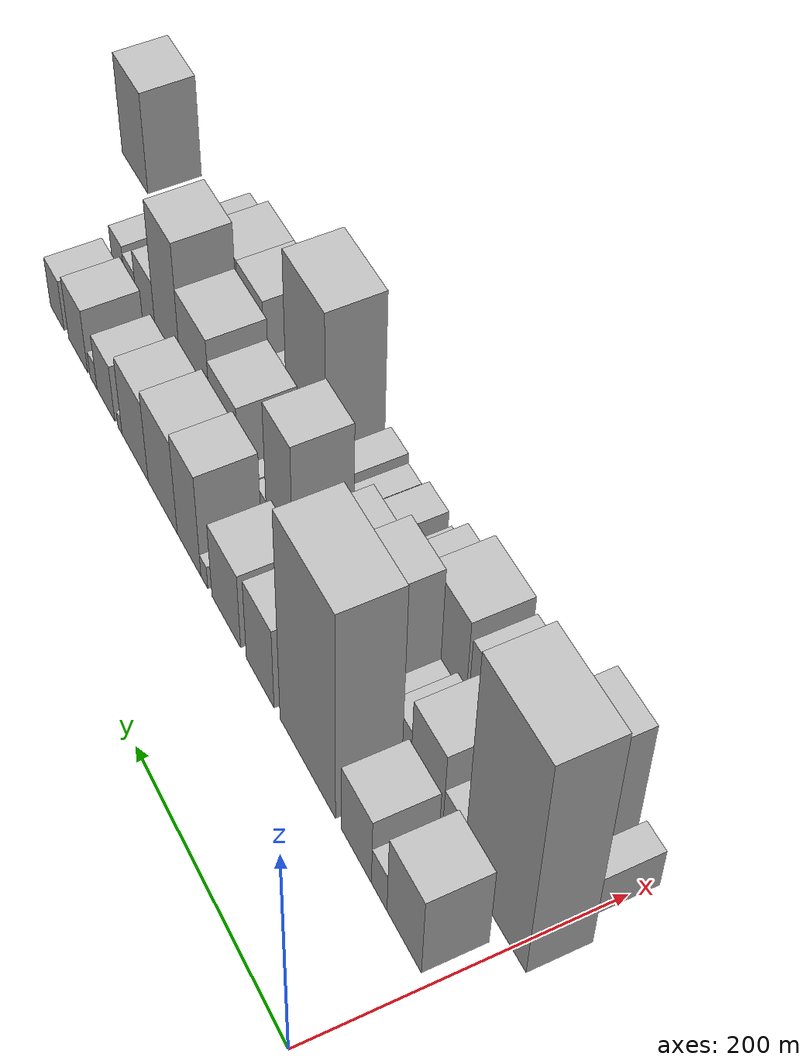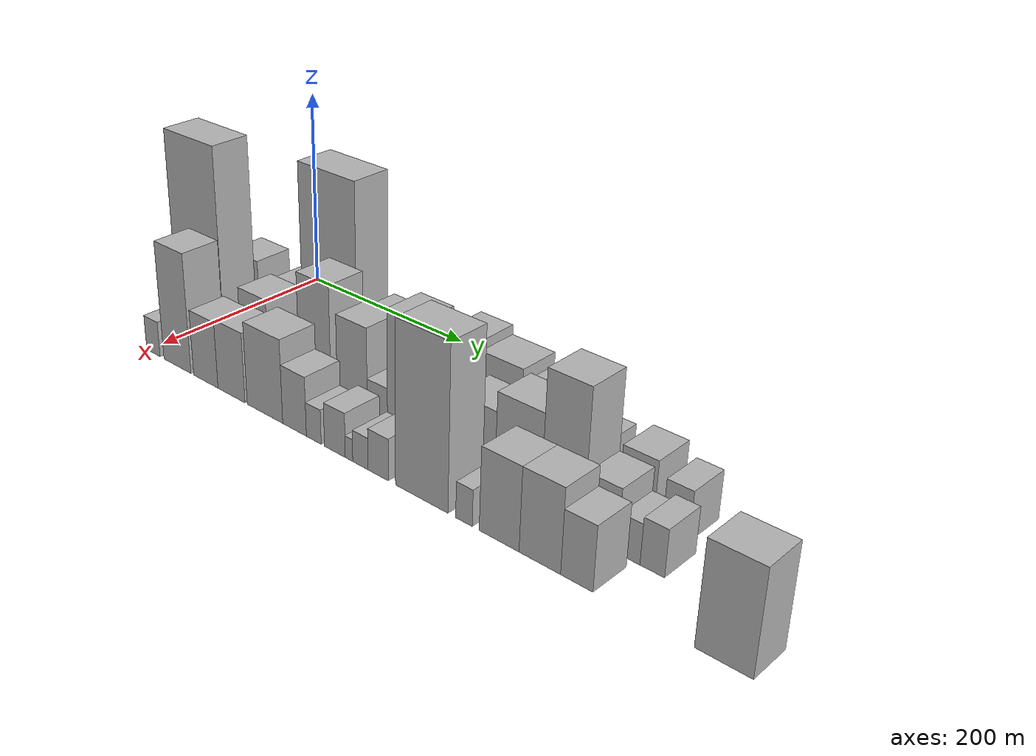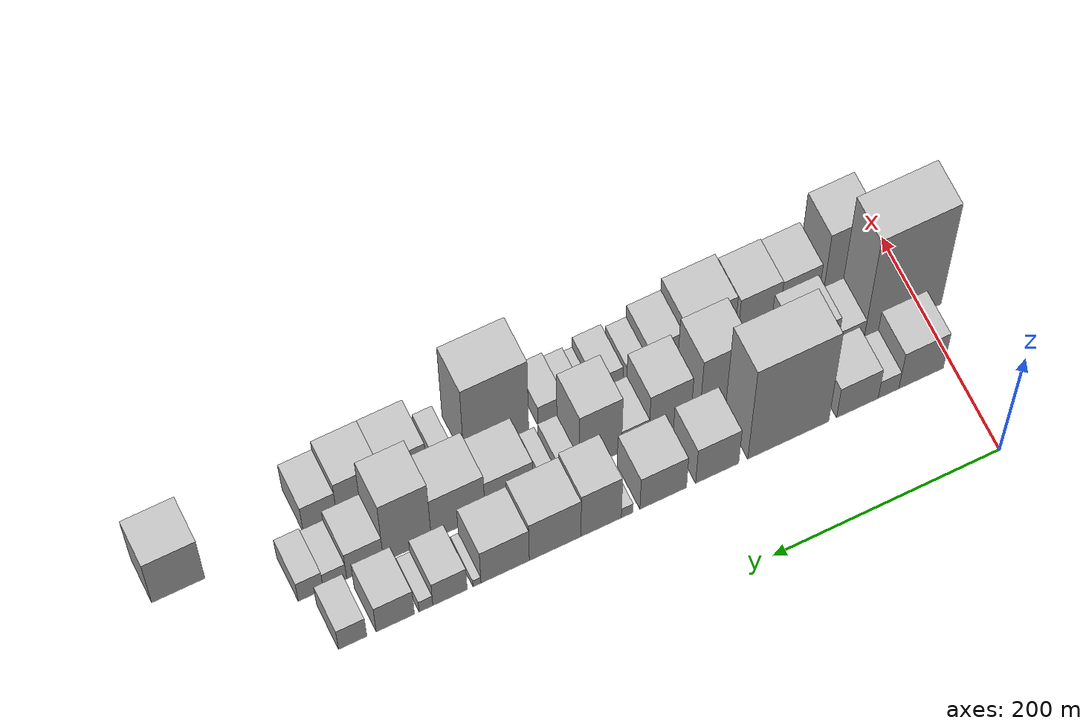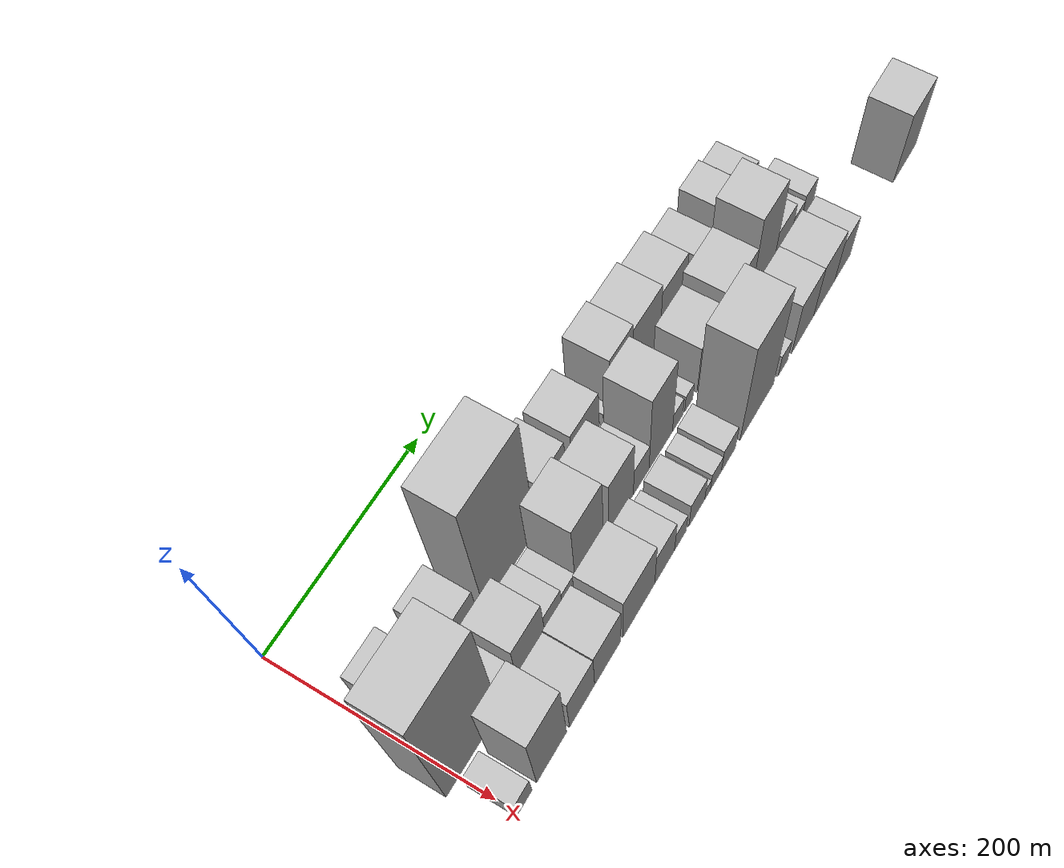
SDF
<sdf version="1.6">
 <world name="default">
  <model name="building_17">
   <static>1</static>
   <pose>100.0000 27.9538 0 0.000000 0.000000 0.000000</pose>
   <link name="link">
    <pose>0 0 37.50 0 0 0</pose>
    <collision name="collision"><geometry><box><size>40.0000 39.7601 75.0000</size></box></geometry></collision>
    <visual name="visual">
     <cast_shadows>0</cast_shadows>
     <geometry><box><size>40.0000 39.7601 75.0000</size></box></geometry>
     <material>
      <script>
       <uri>model://HANNAS_wall/materials/scripts</uri>
       <uri>model://HANNAS_wall/materials/textures</uri>
       <name>vrc/HANNAS_wall</name>
      </script>
     </material>
    </visual>
   </link>
  </model>
  <model name="building_18">
   <static>1</static>
   <pose>100.0000 57.0357 0 0.000000 0.000000 0.000000</pose>
   <link name="link">
    <pose>0 0 18.00 0 0 0</pose>
    <collision name="collision"><geometry><box><size>40.0000 18.4037 36.0000</size></box></geometry></collision>
    <visual name="visual">
     <cast_shadows>0</cast_shadows>
     <geometry><box><size>40.0000 18.4037 36.0000</size></box></geometry>
     <material>
      <script>
       <uri>model://HANNAS_wall/materials/scripts</uri>
       <uri>model://HANNAS_wall/materials/textures</uri>
       <name>vrc/HANNAS_wall</name>
      </script>
     </material>
    </visual>
   </link>
  </model>
  <model name="building_19">
   <static>1</static>
   <pose>100.0000 84.7148 0 0.000000 0.000000 0.000000</pose>
   <link name="link">
    <pose>0 0 31.50 0 0 0</pose>
    <collision name="collision"><geometry><box><size>40.0000 36.9546 63.0000</size></box></geometry></collision>
    <visual name="visual">
     <cast_shadows>0</cast_shadows>
     <geometry><box><size>40.0000 36.9546 63.0000</size></box></geometry>
     <material>
      <script>
       <uri>model://HANNAS_wall/materials/scripts</uri>
       <uri>model://HANNAS_wall/materials/textures</uri>
       <name>vrc/HANNAS_wall</name>
      </script>
     </material>
    </visual>
   </link>
  </model>
  <model name="building_20">
   <static>1</static>
   <pose>100.0000 145.9406 0 0.000000 0.000000 0.000000</pose>
   <link name="link">
    <pose>0 0 96.00 0 0 0</pose>
    <collision name="collision"><geometry><box><size>40.0000 71.4970 192.0000</size></box></geometry></collision>
    <visual name="visual">
     <cast_shadows>0</cast_shadows>
     <geometry><box><size>40.0000 71.4970 192.0000</size></box></geometry>
     <material>
      <script>
       <uri>model://HANNAS_wall/materials/scripts</uri>
       <uri>model://HANNAS_wall/materials/textures</uri>
       <name>vrc/HANNAS_wall</name>
      </script>
     </material>
    </visual>
   </link>
  </model>
  <model name="building_21">
   <static>1</static>
   <pose>100.0000 208.5937 0 0.000000 0.000000 0.000000</pose>
   <link name="link">
    <pose>0 0 37.50 0 0 0</pose>
    <collision name="collision"><geometry><box><size>40.0000 37.8092 75.0000</size></box></geometry></collision>
    <visual name="visual">
     <cast_shadows>0</cast_shadows>
     <geometry><box><size>40.0000 37.8092 75.0000</size></box></geometry>
     <material>
      <script>
       <uri>model://HANNAS_wall/materials/scripts</uri>
       <uri>model://HANNAS_wall/materials/textures</uri>
       <name>vrc/HANNAS_wall</name>
      </script>
     </material>
    </visual>
   </link>
  </model>
  <model name="building_22">
   <static>1</static>
   <pose>100.0000 255.8856 0 0.000000 0.000000 0.000000</pose>
   <link name="link">
    <pose>0 0 34.50 0 0 0</pose>
    <collision name="collision"><geometry><box><size>40.0000 40.7748 69.0000</size></box></geometry></collision>
    <visual name="visual">
     <cast_shadows>0</cast_shadows>
     <geometry><box><size>40.0000 40.7748 69.0000</size></box></geometry>
     <material>
      <script>
       <uri>model://HANNAS_wall/materials/scripts</uri>
       <uri>model://HANNAS_wall/materials/textures</uri>
       <name>vrc/HANNAS_wall</name>
      </script>
     </material>
    </visual>
   </link>
  </model>
  <model name="building_23">
   <static>1</static>
   <pose>100.0000 287.3628 0 0.000000 0.000000 0.000000</pose>
   <link name="link">
    <pose>0 0 10.50 0 0 0</pose>
    <collision name="collision"><geometry><box><size>40.0000 10.1794 21.0000</size></box></geometry></collision>
    <visual name="visual">
     <cast_shadows>0</cast_shadows>
     <geometry><box><size>40.0000 10.1794 21.0000</size></box></geometry>
     <material>
      <script>
       <uri>model://HANNAS_wall/materials/scripts</uri>
       <uri>model://HANNAS_wall/materials/textures</uri>
       <name>vrc/HANNAS_wall</name>
      </script>
     </material>
    </visual>
   </link>
  </model>
  <model name="building_24">
   <static>1</static>
   <pose>100.0000 309.9625 0 0.000000 0.000000 0.000000</pose>
   <link name="link">
    <pose>0 0 46.50 0 0 0</pose>
    <collision name="collision"><geometry><box><size>40.0000 35.0200 93.0000</size></box></geometry></collision>
    <visual name="visual">
     <cast_shadows>0</cast_shadows>
     <geometry><box><size>40.0000 35.0200 93.0000</size></box></geometry>
     <material>
      <script>
       <uri>model://HANNAS_wall/materials/scripts</uri>
       <uri>model://HANNAS_wall/materials/textures</uri>
       <name>vrc/HANNAS_wall</name>
      </script>
     </material>
    </visual>
   </link>
  </model>
  <model name="building_25">
   <static>1</static>
   <pose>100.0000 349.8881 0 0.000000 0.000000 0.000000</pose>
   <link name="link">
    <pose>0 0 42.00 0 0 0</pose>
    <collision name="collision"><geometry><box><size>40.0000 44.8312 84.0000</size></box></geometry></collision>
    <visual name="visual">
     <cast_shadows>0</cast_shadows>
     <geometry><box><size>40.0000 44.8312 84.0000</size></box></geometry>
     <material>
      <script>
       <uri>model://HANNAS_wall/materials/scripts</uri>
       <uri>model://HANNAS_wall/materials/textures</uri>
       <name>vrc/HANNAS_wall</name>
      </script>
     </material>
    </visual>
   </link>
  </model>
  <model name="building_26">
   <static>1</static>
   <pose>100.0000 393.1791 0 0.000000 0.000000 0.000000</pose>
   <link name="link">
    <pose>0 0 36.00 0 0 0</pose>
    <collision name="collision"><geometry><box><size>40.0000 41.7509 72.0000</size></box></geometry></collision>
    <visual name="visual">
     <cast_shadows>0</cast_shadows>
     <geometry><box><size>40.0000 41.7509 72.0000</size></box></geometry>
     <material>
      <script>
       <uri>model://HANNAS_wall/materials/scripts</uri>
       <uri>model://HANNAS_wall/materials/textures</uri>
       <name>vrc/HANNAS_wall</name>
      </script>
     </material>
    </visual>
   </link>
  </model>
  <model name="building_27">
   <static>1</static>
   <pose>100.0000 417.5110 0 0.000000 0.000000 0.000000</pose>
   <link name="link">
    <pose>0 0 7.50 0 0 0</pose>
    <collision name="collision"><geometry><box><size>40.0000 6.9128 15.0000</size></box></geometry></collision>
    <visual name="visual">
     <cast_shadows>0</cast_shadows>
     <geometry><box><size>40.0000 6.9128 15.0000</size></box></geometry>
     <material>
      <script>
       <uri>model://HANNAS_wall/materials/scripts</uri>
       <uri>model://HANNAS_wall/materials/textures</uri>
       <name>vrc/HANNAS_wall</name>
      </script>
     </material>
    </visual>
   </link>
  </model>
  <model name="building_28">
   <static>1</static>
   <pose>100.0000 440.7020 0 0.000000 0.000000 0.000000</pose>
   <link name="link">
    <pose>0 0 25.50 0 0 0</pose>
    <collision name="collision"><geometry><box><size>40.0000 29.4691 51.0000</size></box></geometry></collision>
    <visual name="visual">
     <cast_shadows>0</cast_shadows>
     <geometry><box><size>40.0000 29.4691 51.0000</size></box></geometry>
     <material>
      <script>
       <uri>model://HANNAS_wall/materials/scripts</uri>
       <uri>model://HANNAS_wall/materials/textures</uri>
       <name>vrc/HANNAS_wall</name>
      </script>
     </material>
    </visual>
   </link>
  </model>
  <model name="building_29">
   <static>1</static>
   <pose>100.0000 461.3419 0 0.000000 0.000000 0.000000</pose>
   <link name="link">
    <pose>0 0 12.00 0 0 0</pose>
    <collision name="collision"><geometry><box><size>40.0000 11.8106 24.0000</size></box></geometry></collision>
    <visual name="visual">
     <cast_shadows>0</cast_shadows>
     <geometry><box><size>40.0000 11.8106 24.0000</size></box></geometry>
     <material>
      <script>
       <uri>model://HANNAS_wall/materials/scripts</uri>
       <uri>model://HANNAS_wall/materials/textures</uri>
       <name>vrc/HANNAS_wall</name>
      </script>
     </material>
    </visual>
   </link>
  </model>
  <model name="building_30">
   <static>1</static>
   <pose>100.0000 487.6232 0 0.000000 0.000000 0.000000</pose>
   <link name="link">
    <pose>0 0 28.50 0 0 0</pose>
    <collision name="collision"><geometry><box><size>40.0000 32.7519 57.0000</size></box></geometry></collision>
    <visual name="visual">
     <cast_shadows>0</cast_shadows>
     <geometry><box><size>40.0000 32.7519 57.0000</size></box></geometry>
     <material>
      <script>
       <uri>model://HANNAS_wall/materials/scripts</uri>
       <uri>model://HANNAS_wall/materials/textures</uri>
       <name>vrc/HANNAS_wall</name>
      </script>
     </material>
    </visual>
   </link>
  </model>
  <model name="building_31">
   <static>1</static>
   <pose>100.0000 524.0731 0 0.000000 0.000000 0.000000</pose>
   <link name="link">
    <pose>0 0 22.50 0 0 0</pose>
    <collision name="collision"><geometry><box><size>40.0000 24.1480 45.0000</size></box></geometry></collision>
    <visual name="visual">
     <cast_shadows>0</cast_shadows>
     <geometry><box><size>40.0000 24.1480 45.0000</size></box></geometry>
     <material>
      <script>
       <uri>model://HANNAS_wall/materials/scripts</uri>
       <uri>model://HANNAS_wall/materials/textures</uri>
       <name>vrc/HANNAS_wall</name>
      </script>
     </material>
    </visual>
   </link>
  </model>
  <model name="building_46">
   <static>1</static>
   <pose>149.0000 18.8883 0 0.000000 0.000000 0.000000</pose>
   <link name="link">
    <pose>0 0 102.00 0 0 0</pose>
    <collision name="collision"><geometry><box><size>40.0000 69.2278 204.0000</size></box></geometry></collision>
    <visual name="visual">
     <cast_shadows>0</cast_shadows>
     <geometry><box><size>40.0000 69.2278 204.0000</size></box></geometry>
     <material>
      <script>
       <uri>model://HANNAS_wall/materials/scripts</uri>
       <uri>model://HANNAS_wall/materials/textures</uri>
       <name>vrc/HANNAS_wall</name>
      </script>
     </material>
    </visual>
   </link>
  </model>
  <model name="building_47">
   <static>1</static>
   <pose>149.0000 65.6728 0 0.000000 0.000000 0.000000</pose>
   <link name="link">
    <pose>0 0 21.00 0 0 0</pose>
    <collision name="collision"><geometry><box><size>40.0000 24.3411 42.0000</size></box></geometry></collision>
    <visual name="visual">
     <cast_shadows>0</cast_shadows>
     <geometry><box><size>40.0000 24.3411 42.0000</size></box></geometry>
     <material>
      <script>
       <uri>model://HANNAS_wall/materials/scripts</uri>
       <uri>model://HANNAS_wall/materials/textures</uri>
       <name>vrc/HANNAS_wall</name>
      </script>
     </material>
    </visual>
   </link>
  </model>
  <model name="building_48">
   <static>1</static>
   <pose>149.0000 96.9563 0 0.000000 0.000000 0.000000</pose>
   <link name="link">
    <pose>0 0 37.50 0 0 0</pose>
    <collision name="collision"><geometry><box><size>40.0000 38.2260 75.0000</size></box></geometry></collision>
    <visual name="visual">
     <cast_shadows>0</cast_shadows>
     <geometry><box><size>40.0000 38.2260 75.0000</size></box></geometry>
     <material>
      <script>
       <uri>model://HANNAS_wall/materials/scripts</uri>
       <uri>model://HANNAS_wall/materials/textures</uri>
       <name>vrc/HANNAS_wall</name>
      </script>
     </material>
    </visual>
   </link>
  </model>
  <model name="building_49">
   <static>1</static>
   <pose>149.0000 127.8370 0 0.000000 0.000000 0.000000</pose>
   <link name="link">
    <pose>0 0 22.50 0 0 0</pose>
    <collision name="collision"><geometry><box><size>40.0000 23.5353 45.0000</size></box></geometry></collision>
    <visual name="visual">
     <cast_shadows>0</cast_shadows>
     <geometry><box><size>40.0000 23.5353 45.0000</size></box></geometry>
     <material>
      <script>
       <uri>model://HANNAS_wall/materials/scripts</uri>
       <uri>model://HANNAS_wall/materials/textures</uri>
       <name>vrc/HANNAS_wall</name>
      </script>
     </material>
    </visual>
   </link>
  </model>
  <model name="building_50">
   <static>1</static>
   <pose>149.0000 149.1047 0 0.000000 0.000000 0.000000</pose>
   <link name="link">
    <pose>0 0 16.50 0 0 0</pose>
    <collision name="collision"><geometry><box><size>40.0000 19.0002 33.0000</size></box></geometry></collision>
    <visual name="visual">
     <cast_shadows>0</cast_shadows>
     <geometry><box><size>40.0000 19.0002 33.0000</size></box></geometry>
     <material>
      <script>
       <uri>model://HANNAS_wall/materials/scripts</uri>
       <uri>model://HANNAS_wall/materials/textures</uri>
       <name>vrc/HANNAS_wall</name>
      </script>
     </material>
    </visual>
   </link>
  </model>
  <model name="building_51">
   <static>1</static>
   <pose>149.0000 178.9064 0 0.000000 0.000000 0.000000</pose>
   <link name="link">
    <pose>0 0 58.50 0 0 0</pose>
    <collision name="collision"><geometry><box><size>40.0000 40.6032 117.0000</size></box></geometry></collision>
    <visual name="visual">
     <cast_shadows>0</cast_shadows>
     <geometry><box><size>40.0000 40.6032 117.0000</size></box></geometry>
     <material>
      <script>
       <uri>model://HANNAS_wall/materials/scripts</uri>
       <uri>model://HANNAS_wall/materials/textures</uri>
       <name>vrc/HANNAS_wall</name>
      </script>
     </material>
    </visual>
   </link>
  </model>
  <model name="building_52">
   <static>1</static>
   <pose>149.0000 225.6427 0 0.000000 0.000000 0.000000</pose>
   <link name="link">
    <pose>0 0 46.50 0 0 0</pose>
    <collision name="collision"><geometry><box><size>40.0000 36.8693 93.0000</size></box></geometry></collision>
    <visual name="visual">
     <cast_shadows>0</cast_shadows>
     <geometry><box><size>40.0000 36.8693 93.0000</size></box></geometry>
     <material>
      <script>
       <uri>model://HANNAS_wall/materials/scripts</uri>
       <uri>model://HANNAS_wall/materials/textures</uri>
       <name>vrc/HANNAS_wall</name>
      </script>
     </material>
    </visual>
   </link>
  </model>
  <model name="building_53">
   <static>1</static>
   <pose>149.0000 256.0992 0 0.000000 0.000000 0.000000</pose>
   <link name="link">
    <pose>0 0 22.50 0 0 0</pose>
    <collision name="collision"><geometry><box><size>40.0000 24.0437 45.0000</size></box></geometry></collision>
    <visual name="visual">
     <cast_shadows>0</cast_shadows>
     <geometry><box><size>40.0000 24.0437 45.0000</size></box></geometry>
     <material>
      <script>
       <uri>model://HANNAS_wall/materials/scripts</uri>
       <uri>model://HANNAS_wall/materials/textures</uri>
       <name>vrc/HANNAS_wall</name>
      </script>
     </material>
    </visual>
   </link>
  </model>
  <model name="building_54">
   <static>1</static>
   <pose>149.0000 286.5299 0 0.000000 0.000000 0.000000</pose>
   <link name="link">
    <pose>0 0 60.00 0 0 0</pose>
    <collision name="collision"><geometry><box><size>40.0000 36.8177 120.0000</size></box></geometry></collision>
    <visual name="visual">
     <cast_shadows>0</cast_shadows>
     <geometry><box><size>40.0000 36.8177 120.0000</size></box></geometry>
     <material>
      <script>
       <uri>model://HANNAS_wall/materials/scripts</uri>
       <uri>model://HANNAS_wall/materials/textures</uri>
       <name>vrc/HANNAS_wall</name>
      </script>
     </material>
    </visual>
   </link>
  </model>
  <model name="building_55">
   <static>1</static>
   <pose>149.0000 313.3222 0 0.000000 0.000000 0.000000</pose>
   <link name="link">
    <pose>0 0 15.00 0 0 0</pose>
    <collision name="collision"><geometry><box><size>40.0000 16.7668 30.0000</size></box></geometry></collision>
    <visual name="visual">
     <cast_shadows>0</cast_shadows>
     <geometry><box><size>40.0000 16.7668 30.0000</size></box></geometry>
     <material>
      <script>
       <uri>model://HANNAS_wall/materials/scripts</uri>
       <uri>model://HANNAS_wall/materials/textures</uri>
       <name>vrc/HANNAS_wall</name>
      </script>
     </material>
    </visual>
   </link>
  </model>
  <model name="building_56">
   <static>1</static>
   <pose>149.0000 331.3526 0 0.000000 0.000000 0.000000</pose>
   <link name="link">
    <pose>0 0 13.50 0 0 0</pose>
    <collision name="collision"><geometry><box><size>40.0000 13.2940 27.0000</size></box></geometry></collision>
    <visual name="visual">
     <cast_shadows>0</cast_shadows>
     <geometry><box><size>40.0000 13.2940 27.0000</size></box></geometry>
     <material>
      <script>
       <uri>model://HANNAS_wall/materials/scripts</uri>
       <uri>model://HANNAS_wall/materials/textures</uri>
       <name>vrc/HANNAS_wall</name>
      </script>
     </material>
    </visual>
   </link>
  </model>
  <model name="building_57">
   <static>1</static>
   <pose>149.0000 365.9065 0 0.000000 0.000000 0.000000</pose>
   <link name="link">
    <pose>0 0 36.00 0 0 0</pose>
    <collision name="collision"><geometry><box><size>40.0000 41.8138 72.0000</size></box></geometry></collision>
    <visual name="visual">
     <cast_shadows>0</cast_shadows>
     <geometry><box><size>40.0000 41.8138 72.0000</size></box></geometry>
     <material>
      <script>
       <uri>model://HANNAS_wall/materials/scripts</uri>
       <uri>model://HANNAS_wall/materials/textures</uri>
       <name>vrc/HANNAS_wall</name>
      </script>
     </material>
    </visual>
   </link>
  </model>
  <model name="building_58">
   <static>1</static>
   <pose>149.0000 410.0503 0 0.000000 0.000000 0.000000</pose>
   <link name="link">
    <pose>0 0 45.00 0 0 0</pose>
    <collision name="collision"><geometry><box><size>40.0000 46.4736 90.0000</size></box></geometry></collision>
    <visual name="visual">
     <cast_shadows>0</cast_shadows>
     <geometry><box><size>40.0000 46.4736 90.0000</size></box></geometry>
     <material>
      <script>
       <uri>model://HANNAS_wall/materials/scripts</uri>
       <uri>model://HANNAS_wall/materials/textures</uri>
       <name>vrc/HANNAS_wall</name>
      </script>
     </material>
    </visual>
   </link>
  </model>
  <model name="building_59">
   <static>1</static>
   <pose>149.0000 453.8525 0 0.000000 0.000000 0.000000</pose>
   <link name="link">
    <pose>0 0 64.50 0 0 0</pose>
    <collision name="collision"><geometry><box><size>40.0000 41.1309 129.0000</size></box></geometry></collision>
    <visual name="visual">
     <cast_shadows>0</cast_shadows>
     <geometry><box><size>40.0000 41.1309 129.0000</size></box></geometry>
     <material>
      <script>
       <uri>model://HANNAS_wall/materials/scripts</uri>
       <uri>model://HANNAS_wall/materials/textures</uri>
       <name>vrc/HANNAS_wall</name>
      </script>
     </material>
    </visual>
   </link>
  </model>
  <model name="building_60">
   <static>1</static>
   <pose>149.0000 490.2724 0 0.000000 0.000000 0.000000</pose>
   <link name="link">
    <pose>0 0 28.50 0 0 0</pose>
    <collision name="collision"><geometry><box><size>40.0000 31.7090 57.0000</size></box></geometry></collision>
    <visual name="visual">
     <cast_shadows>0</cast_shadows>
     <geometry><box><size>40.0000 31.7090 57.0000</size></box></geometry>
     <material>
      <script>
       <uri>model://HANNAS_wall/materials/scripts</uri>
       <uri>model://HANNAS_wall/materials/textures</uri>
       <name>vrc/HANNAS_wall</name>
      </script>
     </material>
    </visual>
   </link>
  </model>
  <model name="building_61">
   <static>1</static>
   <pose>149.0000 516.1334 0 0.000000 0.000000 0.000000</pose>
   <link name="link">
    <pose>0 0 18.00 0 0 0</pose>
    <collision name="collision"><geometry><box><size>40.0000 20.0129 36.0000</size></box></geometry></collision>
    <visual name="visual">
     <cast_shadows>0</cast_shadows>
     <geometry><box><size>40.0000 20.0129 36.0000</size></box></geometry>
     <material>
      <script>
       <uri>model://HANNAS_wall/materials/scripts</uri>
       <uri>model://HANNAS_wall/materials/textures</uri>
       <name>vrc/HANNAS_wall</name>
      </script>
     </material>
    </visual>
   </link>
  </model>
  <model name="building_62">
   <static>1</static>
   <pose>149.0000 536.9266 0 0.000000 0.000000 0.000000</pose>
   <link name="link">
    <pose>0 0 21.00 0 0 0</pose>
    <collision name="collision"><geometry><box><size>40.0000 21.5736 42.0000</size></box></geometry></collision>
    <visual name="visual">
     <cast_shadows>0</cast_shadows>
     <geometry><box><size>40.0000 21.5736 42.0000</size></box></geometry>
     <material>
      <script>
       <uri>model://HANNAS_wall/materials/scripts</uri>
       <uri>model://HANNAS_wall/materials/textures</uri>
       <name>vrc/HANNAS_wall</name>
      </script>
     </material>
    </visual>
   </link>
  </model>
  <model name="building_81">
   <static>1</static>
   <pose>198.0000 7.9105 0 0.000000 0.000000 0.000000</pose>
   <link name="link">
    <pose>0 0 18.00 0 0 0</pose>
    <collision name="collision"><geometry><box><size>40.0000 20.4774 36.0000</size></box></geometry></collision>
    <visual name="visual">
     <cast_shadows>0</cast_shadows>
     <geometry><box><size>40.0000 20.4774 36.0000</size></box></geometry>
     <material>
      <script>
       <uri>model://HANNAS_wall/materials/scripts</uri>
       <uri>model://HANNAS_wall/materials/textures</uri>
       <name>vrc/HANNAS_wall</name>
      </script>
     </material>
    </visual>
   </link>
  </model>
  <model name="building_82">
   <static>1</static>
   <pose>198.0000 44.2791 0 0.000000 0.000000 0.000000</pose>
   <link name="link">
    <pose>0 0 60.00 0 0 0</pose>
    <collision name="collision"><geometry><box><size>40.0000 40.2598 120.0000</size></box></geometry></collision>
    <visual name="visual">
     <cast_shadows>0</cast_shadows>
     <geometry><box><size>40.0000 40.2598 120.0000</size></box></geometry>
     <material>
      <script>
       <uri>model://HANNAS_wall/materials/scripts</uri>
       <uri>model://HANNAS_wall/materials/textures</uri>
       <name>vrc/HANNAS_wall</name>
      </script>
     </material>
    </visual>
   </link>
  </model>
  <model name="building_83">
   <static>1</static>
   <pose>198.0000 85.8127 0 0.000000 0.000000 0.000000</pose>
   <link name="link">
    <pose>0 0 33.00 0 0 0</pose>
    <collision name="collision"><geometry><box><size>40.0000 34.8074 66.0000</size></box></geometry></collision>
    <visual name="visual">
     <cast_shadows>0</cast_shadows>
     <geometry><box><size>40.0000 34.8074 66.0000</size></box></geometry>
     <material>
      <script>
       <uri>model://HANNAS_wall/materials/scripts</uri>
       <uri>model://HANNAS_wall/materials/textures</uri>
       <name>vrc/HANNAS_wall</name>
      </script>
     </material>
    </visual>
   </link>
  </model>
  <model name="building_84">
   <static>1</static>
   <pose>198.0000 121.8656 0 0.000000 0.000000 0.000000</pose>
   <link name="link">
    <pose>0 0 34.50 0 0 0</pose>
    <collision name="collision"><geometry><box><size>40.0000 37.2984 69.0000</size></box></geometry></collision>
    <visual name="visual">
     <cast_shadows>0</cast_shadows>
     <geometry><box><size>40.0000 37.2984 69.0000</size></box></geometry>
     <material>
      <script>
       <uri>model://HANNAS_wall/materials/scripts</uri>
       <uri>model://HANNAS_wall/materials/textures</uri>
       <name>vrc/HANNAS_wall</name>
      </script>
     </material>
    </visual>
   </link>
  </model>
  <model name="building_85">
   <static>1</static>
   <pose>198.0000 166.9454 0 0.000000 0.000000 0.000000</pose>
   <link name="link">
    <pose>0 0 40.50 0 0 0</pose>
    <collision name="collision"><geometry><box><size>40.0000 46.8611 81.0000</size></box></geometry></collision>
    <visual name="visual">
     <cast_shadows>0</cast_shadows>
     <geometry><box><size>40.0000 46.8611 81.0000</size></box></geometry>
     <material>
      <script>
       <uri>model://HANNAS_wall/materials/scripts</uri>
       <uri>model://HANNAS_wall/materials/textures</uri>
       <name>vrc/HANNAS_wall</name>
      </script>
     </material>
    </visual>
   </link>
  </model>
  <model name="building_86">
   <static>1</static>
   <pose>198.0000 205.3657 0 0.000000 0.000000 0.000000</pose>
   <link name="link">
    <pose>0 0 28.50 0 0 0</pose>
    <collision name="collision"><geometry><box><size>40.0000 29.9795 57.0000</size></box></geometry></collision>
    <visual name="visual">
     <cast_shadows>0</cast_shadows>
     <geometry><box><size>40.0000 29.9795 57.0000</size></box></geometry>
     <material>
      <script>
       <uri>model://HANNAS_wall/materials/scripts</uri>
       <uri>model://HANNAS_wall/materials/textures</uri>
       <name>vrc/HANNAS_wall</name>
      </script>
     </material>
    </visual>
   </link>
  </model>
  <model name="building_87">
   <static>1</static>
   <pose>198.0000 229.4938 0 0.000000 0.000000 0.000000</pose>
   <link name="link">
    <pose>0 0 16.50 0 0 0</pose>
    <collision name="collision"><geometry><box><size>40.0000 18.2768 33.0000</size></box></geometry></collision>
    <visual name="visual">
     <cast_shadows>0</cast_shadows>
     <geometry><box><size>40.0000 18.2768 33.0000</size></box></geometry>
     <material>
      <script>
       <uri>model://HANNAS_wall/materials/scripts</uri>
       <uri>model://HANNAS_wall/materials/textures</uri>
       <name>vrc/HANNAS_wall</name>
      </script>
     </material>
    </visual>
   </link>
  </model>
  <model name="building_88">
   <static>1</static>
   <pose>198.0000 255.1366 0 0.000000 0.000000 0.000000</pose>
   <link name="link">
    <pose>0 0 21.00 0 0 0</pose>
    <collision name="collision"><geometry><box><size>40.0000 25.0086 42.0000</size></box></geometry></collision>
    <visual name="visual">
     <cast_shadows>0</cast_shadows>
     <geometry><box><size>40.0000 25.0086 42.0000</size></box></geometry>
     <material>
      <script>
       <uri>model://HANNAS_wall/materials/scripts</uri>
       <uri>model://HANNAS_wall/materials/textures</uri>
       <name>vrc/HANNAS_wall</name>
      </script>
     </material>
    </visual>
   </link>
  </model>
  <model name="building_89">
   <static>1</static>
   <pose>198.0000 272.0456 0 0.000000 0.000000 0.000000</pose>
   <link name="link">
    <pose>0 0 10.50 0 0 0</pose>
    <collision name="collision"><geometry><box><size>40.0000 8.8095 21.0000</size></box></geometry></collision>
    <visual name="visual">
     <cast_shadows>0</cast_shadows>
     <geometry><box><size>40.0000 8.8095 21.0000</size></box></geometry>
     <material>
      <script>
       <uri>model://HANNAS_wall/materials/scripts</uri>
       <uri>model://HANNAS_wall/materials/textures</uri>
       <name>vrc/HANNAS_wall</name>
      </script>
     </material>
    </visual>
   </link>
  </model>
  <model name="building_90">
   <static>1</static>
   <pose>198.0000 285.2907 0 0.000000 0.000000 0.000000</pose>
   <link name="link">
    <pose>0 0 15.00 0 0 0</pose>
    <collision name="collision"><geometry><box><size>40.0000 17.6807 30.0000</size></box></geometry></collision>
    <visual name="visual">
     <cast_shadows>0</cast_shadows>
     <geometry><box><size>40.0000 17.6807 30.0000</size></box></geometry>
     <material>
      <script>
       <uri>model://HANNAS_wall/materials/scripts</uri>
       <uri>model://HANNAS_wall/materials/textures</uri>
       <name>vrc/HANNAS_wall</name>
      </script>
     </material>
    </visual>
   </link>
  </model>
  <model name="building_91">
   <static>1</static>
   <pose>198.0000 305.6951 0 0.000000 0.000000 0.000000</pose>
   <link name="link">
    <pose>0 0 19.50 0 0 0</pose>
    <collision name="collision"><geometry><box><size>40.0000 23.1281 39.0000</size></box></geometry></collision>
    <visual name="visual">
     <cast_shadows>0</cast_shadows>
     <geometry><box><size>40.0000 23.1281 39.0000</size></box></geometry>
     <material>
      <script>
       <uri>model://HANNAS_wall/materials/scripts</uri>
       <uri>model://HANNAS_wall/materials/textures</uri>
       <name>vrc/HANNAS_wall</name>
      </script>
     </material>
    </visual>
   </link>
  </model>
  <model name="building_92">
   <static>1</static>
   <pose>198.0000 353.4840 0 0.000000 0.000000 0.000000</pose>
   <link name="link">
    <pose>0 0 75.00 0 0 0</pose>
    <collision name="collision"><geometry><box><size>40.0000 56.4496 150.0000</size></box></geometry></collision>
    <visual name="visual">
     <cast_shadows>0</cast_shadows>
     <geometry><box><size>40.0000 56.4496 150.0000</size></box></geometry>
     <material>
      <script>
       <uri>model://HANNAS_wall/materials/scripts</uri>
       <uri>model://HANNAS_wall/materials/textures</uri>
       <name>vrc/HANNAS_wall</name>
      </script>
     </material>
    </visual>
   </link>
  </model>
  <model name="building_93">
   <static>1</static>
   <pose>198.0000 398.1841 0 0.000000 0.000000 0.000000</pose>
   <link name="link">
    <pose>0 0 16.50 0 0 0</pose>
    <collision name="collision"><geometry><box><size>40.0000 16.9505 33.0000</size></box></geometry></collision>
    <visual name="visual">
     <cast_shadows>0</cast_shadows>
     <geometry><box><size>40.0000 16.9505 33.0000</size></box></geometry>
     <material>
      <script>
       <uri>model://HANNAS_wall/materials/scripts</uri>
       <uri>model://HANNAS_wall/materials/textures</uri>
       <name>vrc/HANNAS_wall</name>
      </script>
     </material>
    </visual>
   </link>
  </model>
  <model name="building_94">
   <static>1</static>
   <pose>198.0000 433.1695 0 0.000000 0.000000 0.000000</pose>
   <link name="link">
    <pose>0 0 37.50 0 0 0</pose>
    <collision name="collision"><geometry><box><size>40.0000 39.0203 75.0000</size></box></geometry></collision>
    <visual name="visual">
     <cast_shadows>0</cast_shadows>
     <geometry><box><size>40.0000 39.0203 75.0000</size></box></geometry>
     <material>
      <script>
       <uri>model://HANNAS_wall/materials/scripts</uri>
       <uri>model://HANNAS_wall/materials/textures</uri>
       <name>vrc/HANNAS_wall</name>
      </script>
     </material>
    </visual>
   </link>
  </model>
  <model name="building_95">
   <static>1</static>
   <pose>198.0000 472.1107 0 0.000000 0.000000 0.000000</pose>
   <link name="link">
    <pose>0 0 37.50 0 0 0</pose>
    <collision name="collision"><geometry><box><size>40.0000 38.8622 75.0000</size></box></geometry></collision>
    <visual name="visual">
     <cast_shadows>0</cast_shadows>
     <geometry><box><size>40.0000 38.8622 75.0000</size></box></geometry>
     <material>
      <script>
       <uri>model://HANNAS_wall/materials/scripts</uri>
       <uri>model://HANNAS_wall/materials/textures</uri>
       <name>vrc/HANNAS_wall</name>
      </script>
     </material>
    </visual>
   </link>
  </model>
  <model name="building_96">
   <static>1</static>
   <pose>198.0000 506.0632 0 0.000000 0.000000 0.000000</pose>
   <link name="link">
    <pose>0 0 28.50 0 0 0</pose>
    <collision name="collision"><geometry><box><size>40.0000 29.0427 57.0000</size></box></geometry></collision>
    <visual name="visual">
     <cast_shadows>0</cast_shadows>
     <geometry><box><size>40.0000 29.0427 57.0000</size></box></geometry>
     <material>
      <script>
       <uri>model://HANNAS_wall/materials/scripts</uri>
       <uri>model://HANNAS_wall/materials/textures</uri>
       <name>vrc/HANNAS_wall</name>
      </script>
     </material>
    </visual>
   </link>
  </model>
  <model name="building_97">
   <static>1</static>
   <pose>198.0000 627.6522 0 0.000000 0.000000 0.000000</pose>
   <link name="link">
    <pose>0 0 45.00 0 0 0</pose>
    <collision name="collision"><geometry><box><size>40.0000 45.3784 90.0000</size></box></geometry></collision>
    <visual name="visual">
     <cast_shadows>0</cast_shadows>
     <geometry><box><size>40.0000 45.3784 90.0000</size></box></geometry>
     <material>
      <script>
       <uri>model://HANNAS_wall/materials/scripts</uri>
       <uri>model://HANNAS_wall/materials/textures</uri>
       <name>vrc/HANNAS_wall</name>
      </script>
     </material>
    </visual>
   </link>
  </model>
 </world>
</sdf>
